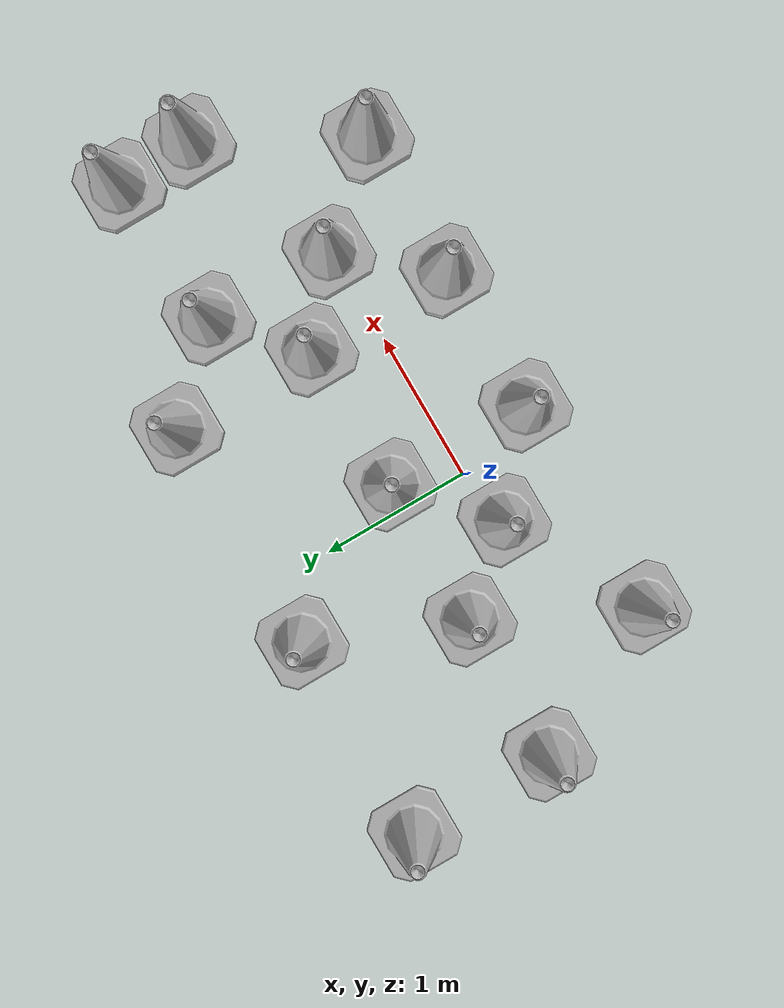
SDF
<?xml version='1.0'?>
<sdf version='1.6'>
  <model name='unit_cylinder_0_0'>
    <model name='Construction Cone'>
      <static>1</static>
      <link name='link'>
        <collision name='collision'>
          <geometry>
            <mesh>
              <scale>10 10 10</scale>
              <uri>model://construction_cone/meshes/construction_cone.dae</uri>
            </mesh>
          </geometry>
        </collision>
        <visual name='visual'>
          <geometry>
            <mesh>
              <scale>10 10 10</scale>
              <uri>model://construction_cone/meshes/construction_cone.dae</uri>
            </mesh>
          </geometry>
        </visual>
      </link>
      <pose frame=''>2.17694 -0.559382 0.000361 0 -0 0</pose>
    </model>
    <model name='Construction Cone_clone'>
      <static>1</static>
      <link name='link'>
        <collision name='collision'>
          <geometry>
            <mesh>
              <scale>10 10 10</scale>
              <uri>model://construction_cone/meshes/construction_cone.dae</uri>
            </mesh>
          </geometry>
        </collision>
        <visual name='visual'>
          <geometry>
            <mesh>
              <scale>10 10 10</scale>
              <uri>model://construction_cone/meshes/construction_cone.dae</uri>
            </mesh>
          </geometry>
        </visual>
      </link>
      <pose frame=''>1.65987 0.026439 0.000635 -2e-06 -0.000165 0.002804</pose>
    </model>
    <model name='Construction Cone_clone_0'>
      <static>1</static>
      <link name='link'>
        <collision name='collision'>
          <geometry>
            <mesh>
              <scale>10 10 10</scale>
              <uri>model://construction_cone/meshes/construction_cone.dae</uri>
            </mesh>
          </geometry>
        </collision>
        <visual name='visual'>
          <geometry>
            <mesh>
              <scale>10 10 10</scale>
              <uri>model://construction_cone/meshes/construction_cone.dae</uri>
            </mesh>
          </geometry>
        </visual>
      </link>
      <pose frame=''>1.17695 -0.562186 0.000556 -2e-06 -0.000165 0.002804</pose>
    </model>
    <model name='Construction Cone_clone_1'>
      <static>1</static>
      <link name='link'>
        <collision name='collision'>
          <geometry>
            <mesh>
              <scale>10 10 10</scale>
              <uri>model://construction_cone/meshes/construction_cone.dae</uri>
            </mesh>
          </geometry>
        </collision>
        <visual name='visual'>
          <geometry>
            <mesh>
              <scale>10 10 10</scale>
              <uri>model://construction_cone/meshes/construction_cone.dae</uri>
            </mesh>
          </geometry>
        </visual>
      </link>
      <pose frame=''>0.174148 0.435006 0.000389 -2e-06 -0.000165 0.002804</pose>
    </model>
    <model name='Construction Cone_clone_10'>
      <static>1</static>
      <link name='link'>
        <collision name='collision'>
          <geometry>
            <mesh>
              <scale>10 10 10</scale>
              <uri>model://construction_cone/meshes/construction_cone.dae</uri>
            </mesh>
          </geometry>
        </collision>
        <visual name='visual'>
          <geometry>
            <mesh>
              <scale>10 10 10</scale>
              <uri>model://construction_cone/meshes/construction_cone.dae</uri>
            </mesh>
          </geometry>
        </visual>
      </link>
      <pose frame=''>-0.409461 1.43337 0.000291 -2e-06 -0.000165 0.002804</pose>
    </model>
    <model name='Construction Cone_clone_11'>
      <static>1</static>
      <link name='link'>
        <collision name='collision'>
          <geometry>
            <mesh>
              <scale>10 10 10</scale>
              <uri>model://construction_cone/meshes/construction_cone.dae</uri>
            </mesh>
          </geometry>
        </collision>
        <visual name='visual'>
          <geometry>
            <mesh>
              <scale>10 10 10</scale>
              <uri>model://construction_cone/meshes/construction_cone.dae</uri>
            </mesh>
          </geometry>
        </visual>
      </link>
      <pose frame=''>-1.82584 0.429399 5.8e-05 -2e-06 -0.000165 0.002804</pose>
    </model>
    <model name='Construction Cone_clone_12'>
      <static>1</static>
      <link name='link'>
        <collision name='collision'>
          <geometry>
            <mesh>
              <scale>10 10 10</scale>
              <uri>model://construction_cone/meshes/construction_cone.dae</uri>
            </mesh>
          </geometry>
        </collision>
        <visual name='visual'>
          <geometry>
            <mesh>
              <scale>10 10 10</scale>
              <uri>model://construction_cone/meshes/construction_cone.dae</uri>
            </mesh>
          </geometry>
        </visual>
      </link>
      <pose frame=''>-0.387982 -0.076696 0.000297 -2e-06 -0.000165 0.002804</pose>
    </model>
    <model name='Construction Cone_clone_13'>
      <static>1</static>
      <link name='link'>
        <collision name='collision'>
          <geometry>
            <mesh>
              <scale>10 10 10</scale>
              <uri>model://construction_cone/meshes/construction_cone.dae</uri>
            </mesh>
          </geometry>
        </collision>
        <visual name='visual'>
          <geometry>
            <mesh>
              <scale>10 10 10</scale>
              <uri>model://construction_cone/meshes/construction_cone.dae</uri>
            </mesh>
          </geometry>
        </visual>
      </link>
      <pose frame=''>-1.82865 1.42939 5.6e-05 -2e-06 -0.000165 0.002804</pose>
    </model>
    <model name='Construction Cone_clone_2'>
      <static>1</static>
      <link name='link'>
        <collision name='collision'>
          <geometry>
            <mesh>
              <scale>10 10 10</scale>
              <uri>model://construction_cone/meshes/construction_cone.dae</uri>
            </mesh>
          </geometry>
        </collision>
        <visual name='visual'>
          <geometry>
            <mesh>
              <scale>10 10 10</scale>
              <uri>model://construction_cone/meshes/construction_cone.dae</uri>
            </mesh>
          </geometry>
        </visual>
      </link>
      <pose frame=''>0.176952 -0.56499 0.000391 -2e-06 -0.000165 0.002804</pose>
    </model>
    <model name='Construction Cone_clone_3'>
      <static>1</static>
      <link name='link'>
        <collision name='collision'>
          <geometry>
            <mesh>
              <scale>10 10 10</scale>
              <uri>model://construction_cone/meshes/construction_cone.dae</uri>
            </mesh>
          </geometry>
        </collision>
        <visual name='visual'>
          <geometry>
            <mesh>
              <scale>10 10 10</scale>
              <uri>model://construction_cone/meshes/construction_cone.dae</uri>
            </mesh>
          </geometry>
        </visual>
      </link>
      <pose frame=''>-1.31819 -0.569182 0.000144 -2e-06 -0.000165 0.002804</pose>
    </model>
    <model name='Construction Cone_clone_4'>
      <static>1</static>
      <link name='link'>
        <collision name='collision'>
          <geometry>
            <mesh>
              <scale>10 10 10</scale>
              <uri>model://construction_cone/meshes/construction_cone.dae</uri>
            </mesh>
          </geometry>
        </collision>
        <visual name='visual'>
          <geometry>
            <mesh>
              <scale>10 10 10</scale>
              <uri>model://construction_cone/meshes/construction_cone.dae</uri>
            </mesh>
          </geometry>
        </visual>
      </link>
      <pose frame=''>-0.825848 0.432203 0.000224 -2e-06 -0.000165 0.002804</pose>
    </model>
    <model name='Construction Cone_clone_5'>
      <static>1</static>
      <link name='link'>
        <collision name='collision'>
          <geometry>
            <mesh>
              <scale>10 10 10</scale>
              <uri>model://construction_cone/meshes/construction_cone.dae</uri>
            </mesh>
          </geometry>
        </collision>
        <visual name='visual'>
          <geometry>
            <mesh>
              <scale>10 10 10</scale>
              <uri>model://construction_cone/meshes/construction_cone.dae</uri>
            </mesh>
          </geometry>
        </visual>
      </link>
      <pose frame=''>1.17134 1.43781 0.000552 -2e-06 -0.000165 0.002804</pose>
    </model>
    <model name='Construction Cone_clone_6'>
      <static>1</static>
      <link name='link'>
        <collision name='collision'>
          <geometry>
            <mesh>
              <scale>10 10 10</scale>
              <uri>model://construction_cone/meshes/construction_cone.dae</uri>
            </mesh>
          </geometry>
        </collision>
        <visual name='visual'>
          <geometry>
            <mesh>
              <scale>10 10 10</scale>
              <uri>model://construction_cone/meshes/construction_cone.dae</uri>
            </mesh>
          </geometry>
        </visual>
      </link>
      <pose frame=''>2.70253 0.969703 0.000806 -2e-06 -0.000165 0.002804</pose>
    </model>
    <model name='Construction Cone_clone_7'>
      <static>1</static>
      <link name='link'>
        <collision name='collision'>
          <geometry>
            <mesh>
              <scale>10 10 10</scale>
              <uri>model://construction_cone/meshes/construction_cone.dae</uri>
            </mesh>
          </geometry>
        </collision>
        <visual name='visual'>
          <geometry>
            <mesh>
              <scale>10 10 10</scale>
              <uri>model://construction_cone/meshes/construction_cone.dae</uri>
            </mesh>
          </geometry>
        </visual>
      </link>
      <pose frame=''>2.7236 0.442155 0.000811 -2e-06 -0.000165 0.002804</pose>
    </model>
    <model name='Construction Cone_clone_8'>
      <static>1</static>
      <link name='link'>
        <collision name='collision'>
          <geometry>
            <mesh>
              <scale>10 10 10</scale>
              <uri>model://construction_cone/meshes/construction_cone.dae</uri>
            </mesh>
          </geometry>
        </collision>
        <visual name='visual'>
          <geometry>
            <mesh>
              <scale>10 10 10</scale>
              <uri>model://construction_cone/meshes/construction_cone.dae</uri>
            </mesh>
          </geometry>
        </visual>
      </link>
      <pose frame=''>1.68114 0.905359 0.000637 -2e-06 -0.000165 0.002804</pose>
    </model>
    <model name='Construction Cone_clone_9'>
      <static>1</static>
      <link name='link'>
        <collision name='collision'>
          <geometry>
            <mesh>
              <scale>10 10 10</scale>
              <uri>model://construction_cone/meshes/construction_cone.dae</uri>
            </mesh>
          </geometry>
        </collision>
        <visual name='visual'>
          <geometry>
            <mesh>
              <scale>10 10 10</scale>
              <uri>model://construction_cone/meshes/construction_cone.dae</uri>
            </mesh>
          </geometry>
        </visual>
      </link>
      <pose frame=''>1.17414 0.43781 0.000554 -2e-06 -0.000165 0.002804</pose>
    </model>
    <static>0</static>
    <allow_auto_disable>1</allow_auto_disable>
  </model>
</sdf>
